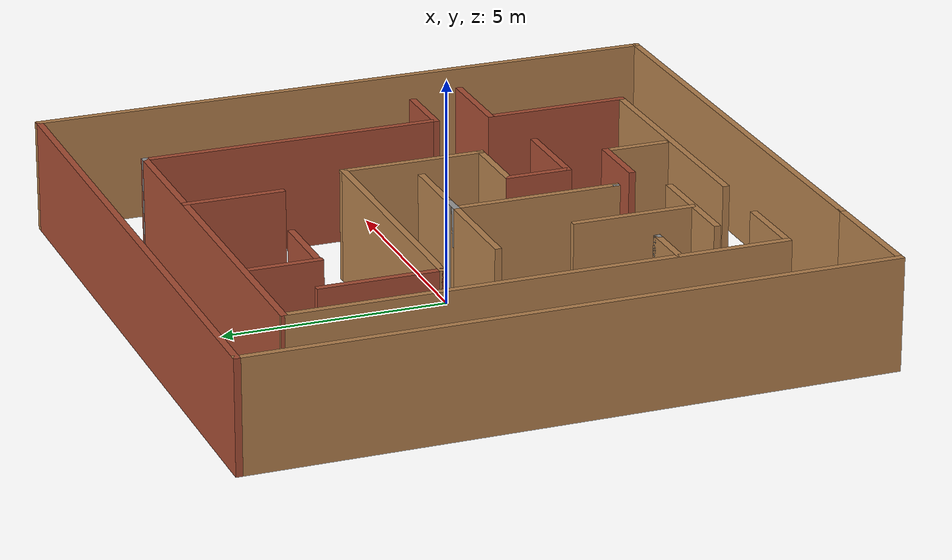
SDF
<?xml version='1.0'?>
<sdf version='1.7'>
  <model name='maze'>
    <pose>0.272303 -0.250633 0 0 -0 0</pose>
    <link name='Wall_25'>
      <collision name='Wall_25_Collision'>
        <geometry>
          <box>
            <size>2.75 0.15 2.5</size>
          </box>
        </geometry>
        <pose>0 0 1.25 0 -0 0</pose>
      </collision>
      <visual name='Wall_25_Visual'>
        <pose>0 0 1.25 0 -0 0</pose>
        <geometry>
          <box>
            <size>2.75 0.15 2.5</size>
          </box>
        </geometry>
        <material>
          <script>
            <uri>file://media/materials/scripts/gazebo.material</uri>
            <name>Gazebo/Wood</name>
          </script>
          <ambient>1 1 1 1</ambient>
        </material>
        <meta>
          <layer>0</layer>
        </meta>
      </visual>
      <pose>-5.35 -7.05 0 0 -0 3.14159</pose>
    </link>
    <link name='Wall_27'>
      <collision name='Wall_27_Collision'>
        <geometry>
          <box>
            <size>11 0.15 2.5</size>
          </box>
        </geometry>
        <pose>0 0 1.25 0 -0 0</pose>
      </collision>
      <visual name='Wall_27_Visual'>
        <pose>0 0 1.25 0 -0 0</pose>
        <geometry>
          <box>
            <size>11 0.15 2.5</size>
          </box>
        </geometry>
        <material>
          <script>
            <uri>file://media/materials/scripts/gazebo.material</uri>
            <name>Gazebo/Wood</name>
          </script>
          <ambient>1 1 1 1</ambient>
        </material>
        <meta>
          <layer>0</layer>
        </meta>
      </visual>
      <pose>1.375 -7.05 0 0 -0 0</pose>
    </link>
    <link name='Wall_28'>
      <collision name='Wall_28_Collision'>
        <geometry>
          <box>
            <size>14.25 0.15 2.5</size>
          </box>
        </geometry>
        <pose>0 0 1.25 0 -0 0</pose>
      </collision>
      <visual name='Wall_28_Visual'>
        <pose>0 0 1.25 0 -0 0</pose>
        <geometry>
          <box>
            <size>14.25 0.15 2.5</size>
          </box>
        </geometry>
        <material>
          <script>
            <uri>file://media/materials/scripts/gazebo.material</uri>
            <name>Gazebo/Wood</name>
          </script>
          <ambient>1 1 1 1</ambient>
        </material>
        <meta>
          <layer>0</layer>
        </meta>
      </visual>
      <pose>6.8 -0 0 0 -0 1.5708</pose>
    </link>
    <link name='Wall_29'>
      <collision name='Wall_29_Collision'>
        <geometry>
          <box>
            <size>13.75 0.15 2.5</size>
          </box>
        </geometry>
        <pose>0 0 1.25 0 -0 0</pose>
      </collision>
      <visual name='Wall_29_Visual'>
        <pose>0 0 1.25 0 -0 0</pose>
        <geometry>
          <box>
            <size>13.75 0.15 2.5</size>
          </box>
        </geometry>
        <material>
          <script>
            <uri>file://media/materials/scripts/gazebo.material</uri>
            <name>Gazebo/Bricks</name>
          </script>
          <ambient>1 1 1 1</ambient>
        </material>
        <meta>
          <layer>0</layer>
        </meta>
      </visual>
      <pose>-0 7.05 0 0 -0 3.14159</pose>
    </link>
    <link name='Wall_30'>
      <collision name='Wall_30_Collision'>
        <geometry>
          <box>
            <size>14.25 0.15 2.5</size>
          </box>
        </geometry>
        <pose>0 0 1.25 0 -0 0</pose>
      </collision>
      <visual name='Wall_30_Visual'>
        <pose>0 0 1.25 0 -0 0</pose>
        <geometry>
          <box>
            <size>14.25 0.15 2.5</size>
          </box>
        </geometry>
        <material>
          <script>
            <uri>file://media/materials/scripts/gazebo.material</uri>
            <name>Gazebo/Wood</name>
          </script>
          <ambient>1 1 1 1</ambient>
        </material>
        <meta>
          <layer>0</layer>
        </meta>
      </visual>
      <pose>-6.8 -0 0 0 -0 -1.5708</pose>
    </link>
    <link name='Wall_38'>
      <collision name='Wall_38_Collision'>
        <geometry>
          <box>
            <size>11 0.15 2.5</size>
          </box>
        </geometry>
        <pose>0 0 1.25 0 -0 0</pose>
      </collision>
      <visual name='Wall_38_Visual'>
        <pose>0 0 1.25 0 -0 0</pose>
        <geometry>
          <box>
            <size>11 0.15 2.5</size>
          </box>
        </geometry>
        <material>
          <script>
            <uri>file://media/materials/scripts/gazebo.material</uri>
            <name>Gazebo/Wood</name>
          </script>
          <ambient>1 1 1 1</ambient>
        </material>
        <meta>
          <layer>0</layer>
        </meta>
      </visual>
      <pose>-5.14329 0.108001 0 0 -0 -1.5708</pose>
    </link>
    <link name='Wall_40'>
      <collision name='Wall_40_Collision'>
        <geometry>
          <box>
            <size>3.25 0.15 2.5</size>
          </box>
        </geometry>
        <pose>0 0 1.25 0 -0 0</pose>
      </collision>
      <visual name='Wall_40_Visual'>
        <pose>0 0 1.25 0 -0 0</pose>
        <geometry>
          <box>
            <size>3.25 0.15 2.5</size>
          </box>
        </geometry>
        <material>
          <script>
            <uri>file://media/materials/scripts/gazebo.material</uri>
            <name>Gazebo/Bricks</name>
          </script>
          <ambient>1 1 1 1</ambient>
        </material>
        <meta>
          <layer>0</layer>
        </meta>
      </visual>
      <pose>3.68705 -3.81614 0 0 -0 1.5708</pose>
    </link>
    <link name='Wall_41'>
      <collision name='Wall_41_Collision'>
        <geometry>
          <box>
            <size>2 0.15 2.5</size>
          </box>
        </geometry>
        <pose>0 0 1.25 0 -0 0</pose>
      </collision>
      <visual name='Wall_41_Visual'>
        <pose>0 0 1.25 0 -0 0</pose>
        <geometry>
          <box>
            <size>2 0.15 2.5</size>
          </box>
        </geometry>
        <material>
          <script>
            <uri>file://media/materials/scripts/gazebo.material</uri>
            <name>Gazebo/Bricks</name>
          </script>
          <ambient>1 1 1 1</ambient>
        </material>
        <meta>
          <layer>0</layer>
        </meta>
      </visual>
      <pose>4.61205 -2.26614 0 0 -0 0</pose>
    </link>
    <link name='Wall_43'>
      <collision name='Wall_43_Collision'>
        <geometry>
          <box>
            <size>1.5 0.15 2.5</size>
          </box>
        </geometry>
        <pose>0 0 1.25 0 -0 0</pose>
      </collision>
      <visual name='Wall_43_Visual'>
        <pose>0 0 1.25 0 -0 0</pose>
        <geometry>
          <box>
            <size>1.5 0.15 2.5</size>
          </box>
        </geometry>
        <material>
          <script>
            <uri>file://media/materials/scripts/gazebo.material</uri>
            <name>Gazebo/Bricks</name>
          </script>
          <ambient>1 1 1 1</ambient>
        </material>
        <meta>
          <layer>0</layer>
        </meta>
      </visual>
      <pose>4.53382 -1.05035 0 0 -0 3.14159</pose>
    </link>
    <link name='Wall_44'>
      <collision name='Wall_44_Collision'>
        <geometry>
          <box>
            <size>6.75 0.15 2.5</size>
          </box>
        </geometry>
        <pose>0 0 1.25 0 -0 0</pose>
      </collision>
      <visual name='Wall_44_Visual'>
        <pose>0 0 1.25 0 -0 0</pose>
        <geometry>
          <box>
            <size>6.75 0.15 2.5</size>
          </box>
        </geometry>
        <material>
          <script>
            <uri>file://media/materials/scripts/gazebo.material</uri>
            <name>Gazebo/Bricks</name>
          </script>
          <ambient>1 1 1 1</ambient>
        </material>
        <meta>
          <layer>0</layer>
        </meta>
      </visual>
      <pose>3.85882 2.24965 0 0 -0 1.5708</pose>
    </link>
    <link name='Wall_48'>
      <collision name='Wall_48_Collision'>
        <geometry>
          <box>
            <size>0.15 0.15 2.5</size>
          </box>
        </geometry>
        <pose>0 0 1.25 0 -0 0</pose>
      </collision>
      <visual name='Wall_48_Visual'>
        <pose>0 0 1.25 0 -0 0</pose>
        <geometry>
          <box>
            <size>0.15 0.15 2.5</size>
          </box>
        </geometry>
        <material>
          <script>
            <uri>file://media/materials/scripts/gazebo.material</uri>
            <name>Gazebo/Grey</name>
          </script>
          <ambient>1 1 1 1</ambient>
        </material>
        <meta>
          <layer>0</layer>
        </meta>
      </visual>
      <pose>3.85882 5.54965 0 0 -0 0</pose>
    </link>
    <link name='Wall_52'>
      <collision name='Wall_52_Collision'>
        <geometry>
          <box>
            <size>9.15212 0.15 2.5</size>
          </box>
        </geometry>
        <pose>0 0 1.25 0 -0 0</pose>
      </collision>
      <visual name='Wall_52_Visual'>
        <pose>0 0 1.25 0 -0 0</pose>
        <geometry>
          <box>
            <size>9.15212 0.15 2.5</size>
          </box>
        </geometry>
        <material>
          <script>
            <uri>file://media/materials/scripts/gazebo.material</uri>
            <name>Gazebo/Bricks</name>
          </script>
          <ambient>1 1 1 1</ambient>
        </material>
        <meta>
          <layer>0</layer>
        </meta>
      </visual>
      <pose>-0.642236 5.54133 0 0 -0 0.00185</pose>
    </link>
    <link name='Wall_54'>
      <collision name='Wall_54_Collision'>
        <geometry>
          <box>
            <size>1.75 0.15 2.5</size>
          </box>
        </geometry>
        <pose>0 0 1.25 0 -0 0</pose>
      </collision>
      <visual name='Wall_54_Visual'>
        <pose>0 0 1.25 0 -0 0</pose>
        <geometry>
          <box>
            <size>1.75 0.15 2.5</size>
          </box>
        </geometry>
        <material>
          <script>
            <uri>file://media/materials/scripts/gazebo.material</uri>
            <name>Gazebo/Wood</name>
          </script>
          <ambient>1 1 1 1</ambient>
        </material>
        <meta>
          <layer>0</layer>
        </meta>
      </visual>
      <pose>-4.34329 -5.317 0 0 -0 0</pose>
    </link>
    <link name='Wall_56'>
      <collision name='Wall_56_Collision'>
        <geometry>
          <box>
            <size>5.75 0.15 2.5</size>
          </box>
        </geometry>
        <pose>0 0 1.25 0 -0 0</pose>
      </collision>
      <visual name='Wall_56_Visual'>
        <pose>0 0 1.25 0 -0 0</pose>
        <geometry>
          <box>
            <size>5.75 0.15 2.5</size>
          </box>
        </geometry>
        <material>
          <script>
            <uri>file://media/materials/scripts/gazebo.material</uri>
            <name>Gazebo/Wood</name>
          </script>
          <ambient>1 1 1 1</ambient>
        </material>
        <meta>
          <layer>0</layer>
        </meta>
      </visual>
      <pose>0.887055 -5.36614 0 0 -0 3.14159</pose>
    </link>
    <link name='Wall_58'>
      <collision name='Wall_58_Collision'>
        <geometry>
          <box>
            <size>2.5 0.15 2.5</size>
          </box>
        </geometry>
        <pose>0 0 1.25 0 -0 0</pose>
      </collision>
      <visual name='Wall_58_Visual'>
        <pose>0 0 1.25 0 -0 0</pose>
        <geometry>
          <box>
            <size>2.5 0.15 2.5</size>
          </box>
        </geometry>
        <material>
          <script>
            <uri>file://media/materials/scripts/gazebo.material</uri>
            <name>Gazebo/Wood</name>
          </script>
          <ambient>1 1 1 1</ambient>
        </material>
        <meta>
          <layer>0</layer>
        </meta>
      </visual>
      <pose>-2.71136 -4.28855 0 0 -0 0</pose>
    </link>
    <link name='Wall_60'>
      <collision name='Wall_60_Collision'>
        <geometry>
          <box>
            <size>2.75 0.15 2.5</size>
          </box>
        </geometry>
        <pose>0 0 1.25 0 -0 0</pose>
      </collision>
      <visual name='Wall_60_Visual'>
        <pose>0 0 1.25 0 -0 0</pose>
        <geometry>
          <box>
            <size>2.75 0.15 2.5</size>
          </box>
        </geometry>
        <material>
          <script>
            <uri>file://media/materials/scripts/gazebo.material</uri>
            <name>Gazebo/Wood</name>
          </script>
          <ambient>1 1 1 1</ambient>
        </material>
        <meta>
          <layer>0</layer>
        </meta>
      </visual>
      <pose>-2.74494 -2.941 0 0 -0 1.5708</pose>
    </link>
    <link name='Wall_62'>
      <collision name='Wall_62_Collision'>
        <geometry>
          <box>
            <size>1.25 0.15 2.5</size>
          </box>
        </geometry>
        <pose>0 0 1.25 0 -0 0</pose>
      </collision>
      <visual name='Wall_62_Visual'>
        <pose>0 0 1.25 0 -0 0</pose>
        <geometry>
          <box>
            <size>1.25 0.15 2.5</size>
          </box>
        </geometry>
        <material>
          <script>
            <uri>file://media/materials/scripts/gazebo.material</uri>
            <name>Gazebo/Wood</name>
          </script>
          <ambient>1 1 1 1</ambient>
        </material>
        <meta>
          <layer>0</layer>
        </meta>
      </visual>
      <pose>-4.5729 -2.93312 0 0 -0 0</pose>
    </link>
    <link name='Wall_63'>
      <collision name='Wall_63_Collision'>
        <geometry>
          <box>
            <size>0.15 0.15 2.5</size>
          </box>
        </geometry>
        <pose>0 0 1.25 0 -0 0</pose>
      </collision>
      <visual name='Wall_63_Visual'>
        <pose>0 0 1.25 0 -0 0</pose>
        <geometry>
          <box>
            <size>0.15 0.15 2.5</size>
          </box>
        </geometry>
        <material>
          <script>
            <uri>file://media/materials/scripts/gazebo.material</uri>
            <name>Gazebo/Grey</name>
          </script>
          <ambient>1 1 1 1</ambient>
        </material>
        <meta>
          <layer>0</layer>
        </meta>
      </visual>
      <pose>-4.0229 -2.93312 0 0 -0 0</pose>
    </link>
    <link name='Wall_65'>
      <collision name='Wall_65_Collision'>
        <geometry>
          <box>
            <size>1.75 0.15 2.5</size>
          </box>
        </geometry>
        <pose>0 0 1.25 0 -0 0</pose>
      </collision>
      <visual name='Wall_65_Visual'>
        <pose>0 0 1.25 0 -0 0</pose>
        <geometry>
          <box>
            <size>1.75 0.15 2.5</size>
          </box>
        </geometry>
        <material>
          <script>
            <uri>file://media/materials/scripts/gazebo.material</uri>
            <name>Gazebo/Bricks</name>
          </script>
          <ambient>1 1 1 1</ambient>
        </material>
        <meta>
          <layer>0</layer>
        </meta>
      </visual>
      <pose>-2.73595 4.73447 0 0 -0 -1.5708</pose>
    </link>
    <link name='Wall_66'>
      <collision name='Wall_66_Collision'>
        <geometry>
          <box>
            <size>1.77441 0.15 2.5</size>
          </box>
        </geometry>
        <pose>0 0 1.25 0 -0 0</pose>
      </collision>
      <visual name='Wall_66_Visual'>
        <pose>0 0 1.25 0 -0 0</pose>
        <geometry>
          <box>
            <size>1.77441 0.15 2.5</size>
          </box>
        </geometry>
        <material>
          <script>
            <uri>file://media/materials/scripts/gazebo.material</uri>
            <name>Gazebo/Bricks</name>
          </script>
          <ambient>1 1 1 1</ambient>
        </material>
        <meta>
          <layer>0</layer>
        </meta>
      </visual>
      <pose>-1.92375 3.95515 0 0 -0 0</pose>
    </link>
    <link name='Wall_68'>
      <collision name='Wall_68_Collision'>
        <geometry>
          <box>
            <size>2.25 0.15 2.5</size>
          </box>
        </geometry>
        <pose>0 0 1.25 0 -0 0</pose>
      </collision>
      <visual name='Wall_68_Visual'>
        <pose>0 0 1.25 0 -0 0</pose>
        <geometry>
          <box>
            <size>2.25 0.15 2.5</size>
          </box>
        </geometry>
        <material>
          <script>
            <uri>file://media/materials/scripts/gazebo.material</uri>
            <name>Gazebo/Bricks</name>
          </script>
          <ambient>1 1 1 1</ambient>
        </material>
        <meta>
          <layer>0</layer>
        </meta>
      </visual>
      <pose>1.11014 4.48447 0 0 -0 -1.5708</pose>
    </link>
    <link name='Wall_71'>
      <collision name='Wall_71_Collision'>
        <geometry>
          <box>
            <size>2.75 0.15 2.5</size>
          </box>
        </geometry>
        <pose>0 0 1.25 0 -0 0</pose>
      </collision>
      <visual name='Wall_71_Visual'>
        <pose>0 0 1.25 0 -0 0</pose>
        <geometry>
          <box>
            <size>2.75 0.15 2.5</size>
          </box>
        </geometry>
        <material>
          <script>
            <uri>file://media/materials/scripts/gazebo.material</uri>
            <name>Gazebo/Bricks</name>
          </script>
          <ambient>1 1 1 1</ambient>
        </material>
        <meta>
          <layer>0</layer>
        </meta>
      </visual>
      <pose>-4.12137 3.11786 0 0 -0 -1.5708</pose>
    </link>
    <link name='Wall_72'>
      <collision name='Wall_72_Collision'>
        <geometry>
          <box>
            <size>6 0.15 2.5</size>
          </box>
        </geometry>
        <pose>0 0 1.25 0 -0 0</pose>
      </collision>
      <visual name='Wall_72_Visual'>
        <pose>0 0 1.25 0 -0 0</pose>
        <geometry>
          <box>
            <size>6 0.15 2.5</size>
          </box>
        </geometry>
        <material>
          <script>
            <uri>file://media/materials/scripts/gazebo.material</uri>
            <name>Gazebo/Wood</name>
          </script>
          <ambient>1 1 1 1</ambient>
        </material>
        <meta>
          <layer>0</layer>
        </meta>
      </visual>
      <pose>-1.19637 1.81786 0 0 -0 0</pose>
    </link>
    <link name='Wall_73'>
      <collision name='Wall_73_Collision'>
        <geometry>
          <box>
            <size>3.25 0.15 2.5</size>
          </box>
        </geometry>
        <pose>0 0 1.25 0 -0 0</pose>
      </collision>
      <visual name='Wall_73_Visual'>
        <pose>0 0 1.25 0 -0 0</pose>
        <geometry>
          <box>
            <size>3.25 0.15 2.5</size>
          </box>
        </geometry>
        <material>
          <script>
            <uri>file://media/materials/scripts/gazebo.material</uri>
            <name>Gazebo/Wood</name>
          </script>
          <ambient>1 1 1 1</ambient>
        </material>
        <meta>
          <layer>0</layer>
        </meta>
      </visual>
      <pose>1.72863 0.267861 0 0 -0 -1.5708</pose>
    </link>
    <link name='Wall_74'>
      <collision name='Wall_74_Collision'>
        <geometry>
          <box>
            <size>1.75 0.15 2.5</size>
          </box>
        </geometry>
        <pose>0 0 1.25 0 -0 0</pose>
      </collision>
      <visual name='Wall_74_Visual'>
        <pose>0 0 1.25 0 -0 0</pose>
        <geometry>
          <box>
            <size>1.75 0.15 2.5</size>
          </box>
        </geometry>
        <material>
          <script>
            <uri>file://media/materials/scripts/gazebo.material</uri>
            <name>Gazebo/Wood</name>
          </script>
          <ambient>1 1 1 1</ambient>
        </material>
        <meta>
          <layer>0</layer>
        </meta>
      </visual>
      <pose>0.928626 -1.28214 0 0 -0 3.14159</pose>
    </link>
    <link name='Wall_75'>
      <collision name='Wall_75_Collision'>
        <geometry>
          <box>
            <size>1.5 0.15 2.5</size>
          </box>
        </geometry>
        <pose>0 0 1.25 0 -0 0</pose>
      </collision>
      <visual name='Wall_75_Visual'>
        <pose>0 0 1.25 0 -0 0</pose>
        <geometry>
          <box>
            <size>1.5 0.15 2.5</size>
          </box>
        </geometry>
        <material>
          <script>
            <uri>file://media/materials/scripts/gazebo.material</uri>
            <name>Gazebo/Bricks</name>
          </script>
          <ambient>1 1 1 1</ambient>
        </material>
        <meta>
          <layer>0</layer>
        </meta>
      </visual>
      <pose>0.128626 -1.95714 0 0 -0 -1.5708</pose>
    </link>
    <link name='Wall_76'>
      <collision name='Wall_76_Collision'>
        <geometry>
          <box>
            <size>2 0.15 2.5</size>
          </box>
        </geometry>
        <pose>0 0 1.25 0 -0 0</pose>
      </collision>
      <visual name='Wall_76_Visual'>
        <pose>0 0 1.25 0 -0 0</pose>
        <geometry>
          <box>
            <size>2 0.15 2.5</size>
          </box>
        </geometry>
        <material>
          <script>
            <uri>file://media/materials/scripts/gazebo.material</uri>
            <name>Gazebo/Bricks</name>
          </script>
          <ambient>1 1 1 1</ambient>
        </material>
        <meta>
          <layer>0</layer>
        </meta>
      </visual>
      <pose>1.05363 -2.63214 0 0 -0 0</pose>
    </link>
    <link name='Wall_78'>
      <collision name='Wall_78_Collision'>
        <geometry>
          <box>
            <size>1.75 0.15 2.5</size>
          </box>
        </geometry>
        <pose>0 0 1.25 0 -0 0</pose>
      </collision>
      <visual name='Wall_78_Visual'>
        <pose>0 0 1.25 0 -0 0</pose>
        <geometry>
          <box>
            <size>1.75 0.15 2.5</size>
          </box>
        </geometry>
        <material>
          <script>
            <uri>file://media/materials/scripts/gazebo.material</uri>
            <name>Gazebo/Wood</name>
          </script>
          <ambient>1 1 1 1</ambient>
        </material>
        <meta>
          <layer>0</layer>
        </meta>
      </visual>
      <pose>0.071621 0.364789 0 0 -0 3.14159</pose>
    </link>
    <link name='Wall_81'>
      <collision name='Wall_81_Collision'>
        <geometry>
          <box>
            <size>0.5 0.15 2.5</size>
          </box>
        </geometry>
        <pose>0 0 1.25 0 -0 0</pose>
      </collision>
      <visual name='Wall_81_Visual'>
        <pose>0 0 1.25 0 -0 0</pose>
        <geometry>
          <box>
            <size>0.5 0.15 2.5</size>
          </box>
        </geometry>
        <material>
          <script>
            <uri>file://media/materials/scripts/gazebo.material</uri>
            <name>Gazebo/Grey</name>
          </script>
          <ambient>1 1 1 1</ambient>
        </material>
        <meta>
          <layer>0</layer>
        </meta>
      </visual>
      <pose>-0.903379 0.364789 0 0 -0 3.14159</pose>
    </link>
    <link name='Wall_85'>
      <collision name='Wall_85_Collision'>
        <geometry>
          <box>
            <size>3.75 0.15 2.5</size>
          </box>
        </geometry>
        <pose>0 0 1.25 0 -0 0</pose>
      </collision>
      <visual name='Wall_85_Visual'>
        <pose>0 0 1.25 0 -0 0</pose>
        <geometry>
          <box>
            <size>3.75 0.15 2.5</size>
          </box>
        </geometry>
        <material>
          <script>
            <uri>file://media/materials/scripts/gazebo.material</uri>
            <name>Gazebo/Wood</name>
          </script>
          <ambient>1 1 1 1</ambient>
        </material>
        <meta>
          <layer>0</layer>
        </meta>
      </visual>
      <pose>-1.07838 -1.43521 0 0 -0 -1.5708</pose>
    </link>
    <link name='Wall_86'>
      <collision name='Wall_86_Collision'>
        <geometry>
          <box>
            <size>0.15 0.15 2.5</size>
          </box>
        </geometry>
        <pose>0 0 1.25 0 -0 0</pose>
      </collision>
      <visual name='Wall_86_Visual'>
        <pose>0 0 1.25 0 -0 0</pose>
        <geometry>
          <box>
            <size>0.15 0.15 2.5</size>
          </box>
        </geometry>
        <material>
          <script>
            <uri>file://media/materials/scripts/gazebo.material</uri>
            <name>Gazebo/Grey</name>
          </script>
          <ambient>1 1 1 1</ambient>
        </material>
        <meta>
          <layer>0</layer>
        </meta>
      </visual>
      <pose>-1.07838 -3.23521 0 0 -0 0</pose>
    </link>
    <link name='Wall_91'>
      <collision name='Wall_91_Collision'>
        <geometry>
          <box>
            <size>1.5 0.15 2.5</size>
          </box>
        </geometry>
        <pose>0 0 1.25 0 -0 0</pose>
      </collision>
      <visual name='Wall_91_Visual'>
        <pose>0 0 1.25 0 -0 0</pose>
        <geometry>
          <box>
            <size>1.5 0.15 2.5</size>
          </box>
        </geometry>
        <material>
          <script>
            <uri>file://media/materials/scripts/gazebo.material</uri>
            <name>Gazebo/Bricks</name>
          </script>
          <ambient>1 1 1 1</ambient>
        </material>
        <meta>
          <layer>0</layer>
        </meta>
      </visual>
      <pose>0.196621 -3.83521 0 0 -0 0</pose>
    </link>
    <link name='Wall_92'>
      <collision name='Wall_92_Collision'>
        <geometry>
          <box>
            <size>1.5 0.15 2.5</size>
          </box>
        </geometry>
        <pose>0 0 1.25 0 -0 0</pose>
      </collision>
      <visual name='Wall_92_Visual'>
        <pose>0 0 1.25 0 -0 0</pose>
        <geometry>
          <box>
            <size>1.5 0.15 2.5</size>
          </box>
        </geometry>
        <material>
          <script>
            <uri>file://media/materials/scripts/gazebo.material</uri>
            <name>Gazebo/Wood</name>
          </script>
          <ambient>1 1 1 1</ambient>
        </material>
        <meta>
          <layer>0</layer>
        </meta>
      </visual>
      <pose>0.871621 -4.51021 0 0 -0 -1.5708</pose>
    </link>
    <link name='Wall_95'>
      <collision name='Wall_95_Collision'>
        <geometry>
          <box>
            <size>2.5 0.15 2.5</size>
          </box>
        </geometry>
        <pose>0 0 1.25 0 -0 0</pose>
      </collision>
      <visual name='Wall_95_Visual'>
        <pose>0 0 1.25 0 -0 0</pose>
        <geometry>
          <box>
            <size>2.5 0.15 2.5</size>
          </box>
        </geometry>
        <material>
          <script>
            <uri>file://media/materials/scripts/gazebo.material</uri>
            <name>Gazebo/Wood</name>
          </script>
          <ambient>1 1 1 1</ambient>
        </material>
        <meta>
          <layer>0</layer>
        </meta>
      </visual>
      <pose>-2.25338 0.364789 0 0 -0 3.14159</pose>
    </link>
    <static>1</static>
  </model>
</sdf>
